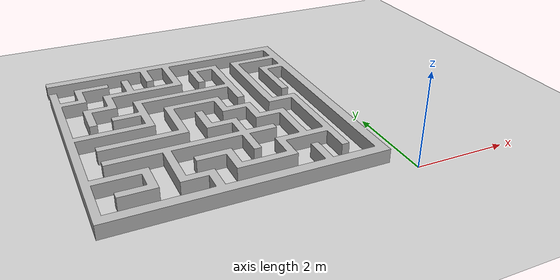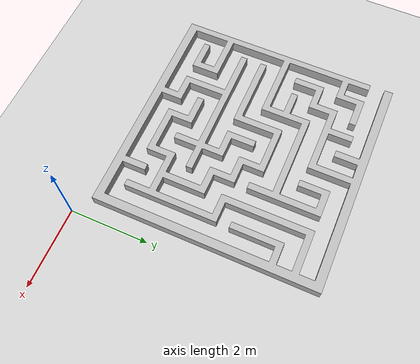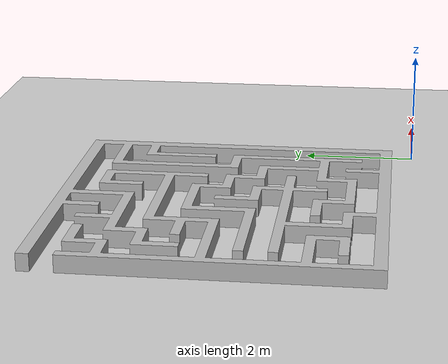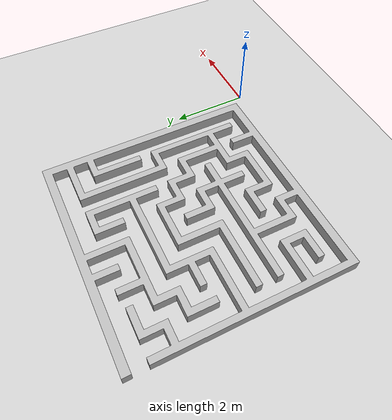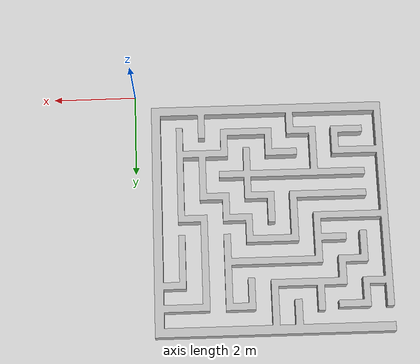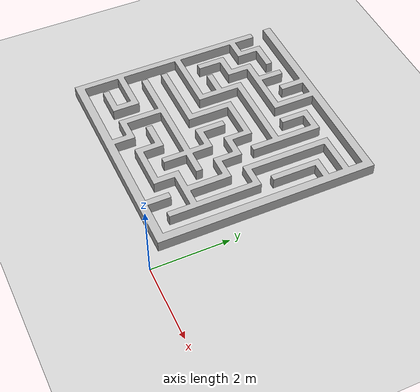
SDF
<sdf version="1.4">
  <world name="default">

    <scene>
      <ambient>0.4 0.4 0.4 1</ambient>
      <background>0.7 0.7 0.7 1</background>
      <shadows>true</shadows>
    </scene>

    <!-- A global light source -->
    <include>
      <uri>model://sun</uri>
    </include>

    <!-- A ground plane -->
    <include>
      <uri>model://ground_plane</uri>
    </include>

    <!-- maze 5 model load -->
    <include>
      <uri>model://maze5</uri>
    </include>

    <physics type="ode">
      <real_time_update_rate>1000.0</real_time_update_rate>
      <max_step_size>0.001</max_step_size>
      <real_time_factor>1</real_time_factor>
      <ode>
        <solver>
          <type>quick</type>
          <iters>150</iters>
          <precon_iters>0</precon_iters>
          <sor>1.400000</sor>
          <use_dynamic_moi_rescaling>1</use_dynamic_moi_rescaling>
        </solver>
        <constraints>
          <cfm>0.00001</cfm>
          <erp>0.2</erp>
          <contact_max_correcting_vel>2000.000000</contact_max_correcting_vel>
          <contact_surface_layer>0.01000</contact_surface_layer>
        </constraints>
      </ode>
    </physics>
  </world>

</sdf>

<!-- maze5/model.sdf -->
<sdf version="1.6">
  <model name="maze5">
    <pose>0 0 0 1.5708 0 0</pose>
    <static>true</static>
    <link name="link">
      <collision name="collision">
        <geometry>
          <mesh>
            <scale>0.001 0.001 0.001</scale>
            <uri>model://maze5/meshes/maze5.stl</uri>
          </mesh>
        </geometry>
      </collision>
      <visual name="visual">
        <geometry>

          <mesh>
            <scale>0.001 0.001 0.001</scale>
            <uri>model://maze5/meshes/maze5.stl</uri>
          </mesh>
        </geometry>
      </visual>
    </link>
  </model>
</sdf>
